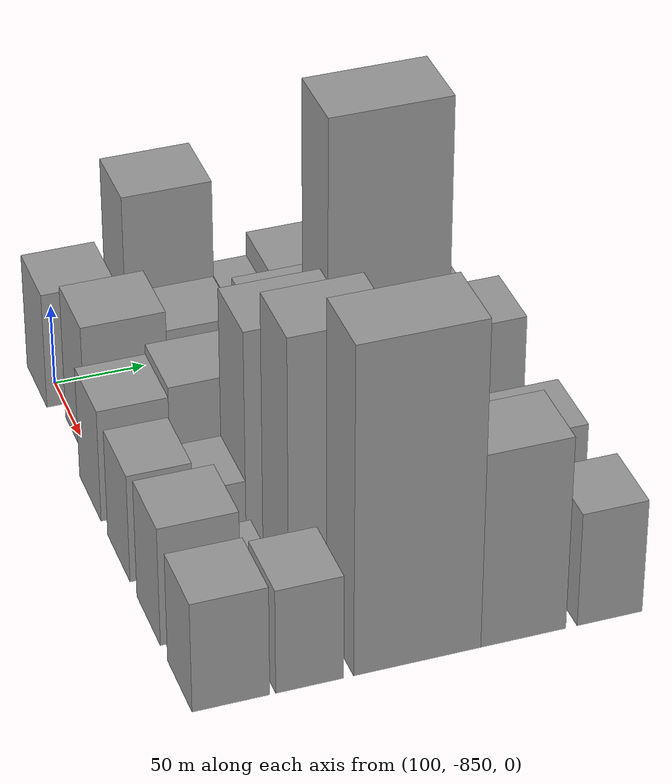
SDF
<sdf version="1.6">
 <world name="default">
  <model name="building_1">
   <static>1</static>
   <pose>100.0000 -839.8954 0 0.000000 0.000000 0.000000</pose>
   <link name="link">
    <pose>0 0 36.00 0 0 0</pose>
    <collision name="collision"><geometry><box><size>40.0000 40.2092 72.0000</size></box></geometry></collision>
    <visual name="visual">
     <cast_shadows>0</cast_shadows>
     <geometry><box><size>40.0000 40.2092 72.0000</size></box></geometry>
     <material>
      <script>
       <uri>model://grey_wall/materials/scripts</uri>
       <uri>model://grey_wall/materials/textures</uri>
       <name>vrc/grey_wall</name>
      </script>
     </material>
    </visual>
   </link>
  </model>
  <model name="building_2">
   <static>1</static>
   <pose>100.0000 -790.3096 0 0.000000 0.000000 0.000000</pose>
   <link name="link">
    <pose>0 0 61.50 0 0 0</pose>
    <collision name="collision"><geometry><box><size>40.0000 48.9624 123.0000</size></box></geometry></collision>
    <visual name="visual">
     <cast_shadows>0</cast_shadows>
     <geometry><box><size>40.0000 48.9624 123.0000</size></box></geometry>
     <material>
      <script>
       <uri>model://grey_wall/materials/scripts</uri>
       <uri>model://grey_wall/materials/textures</uri>
       <name>vrc/grey_wall</name>
      </script>
     </material>
    </visual>
   </link>
  </model>
  <model name="building_3">
   <static>1</static>
   <pose>100.0000 -746.4071 0 0.000000 0.000000 0.000000</pose>
   <link name="link">
    <pose>0 0 22.50 0 0 0</pose>
    <collision name="collision"><geometry><box><size>40.0000 22.8427 45.0000</size></box></geometry></collision>
    <visual name="visual">
     <cast_shadows>0</cast_shadows>
     <geometry><box><size>40.0000 22.8427 45.0000</size></box></geometry>
     <material>
      <script>
       <uri>model://grey_wall/materials/scripts</uri>
       <uri>model://grey_wall/materials/textures</uri>
       <name>vrc/grey_wall</name>
      </script>
     </material>
    </visual>
   </link>
  </model>
  <model name="building_4">
   <static>1</static>
   <pose>100.0000 -717.5129 0 0.000000 0.000000 0.000000</pose>
   <link name="link">
    <pose>0 0 30.00 0 0 0</pose>
    <collision name="collision"><geometry><box><size>40.0000 34.9457 60.0000</size></box></geometry></collision>
    <visual name="visual">
     <cast_shadows>0</cast_shadows>
     <geometry><box><size>40.0000 34.9457 60.0000</size></box></geometry>
     <material>
      <script>
       <uri>model://grey_wall/materials/scripts</uri>
       <uri>model://grey_wall/materials/textures</uri>
       <name>vrc/grey_wall</name>
      </script>
     </material>
    </visual>
   </link>
  </model>
  <model name="building_5">
   <static>1</static>
   <pose>100.0000 -680.2870 0 0.000000 0.000000 0.000000</pose>
   <link name="link">
    <pose>0 0 33.00 0 0 0</pose>
    <collision name="collision"><geometry><box><size>40.0000 39.5061 66.0000</size></box></geometry></collision>
    <visual name="visual">
     <cast_shadows>0</cast_shadows>
     <geometry><box><size>40.0000 39.5061 66.0000</size></box></geometry>
     <material>
      <script>
       <uri>model://grey_wall/materials/scripts</uri>
       <uri>model://grey_wall/materials/textures</uri>
       <name>vrc/grey_wall</name>
      </script>
     </material>
    </visual>
   </link>
  </model>
  <model name="building_6">
   <static>1</static>
   <pose>100.0000 -650.8760 0 0.000000 0.000000 0.000000</pose>
   <link name="link">
    <pose>0 0 18.00 0 0 0</pose>
    <collision name="collision"><geometry><box><size>40.0000 19.3160 36.0000</size></box></geometry></collision>
    <visual name="visual">
     <cast_shadows>0</cast_shadows>
     <geometry><box><size>40.0000 19.3160 36.0000</size></box></geometry>
     <material>
      <script>
       <uri>model://grey_wall/materials/scripts</uri>
       <uri>model://grey_wall/materials/textures</uri>
       <name>vrc/grey_wall</name>
      </script>
     </material>
    </visual>
   </link>
  </model>
  <model name="building_53">
   <static>1</static>
   <pose>152.0000 -830.3394 0 0.000000 0.000000 0.000000</pose>
   <link name="link">
    <pose>0 0 42.00 0 0 0</pose>
    <collision name="collision"><geometry><box><size>40.0000 45.3212 84.0000</size></box></geometry></collision>
    <visual name="visual">
     <cast_shadows>0</cast_shadows>
     <geometry><box><size>40.0000 45.3212 84.0000</size></box></geometry>
     <material>
      <script>
       <uri>model://grey_wall/materials/scripts</uri>
       <uri>model://grey_wall/materials/textures</uri>
       <name>vrc/grey_wall</name>
      </script>
     </material>
    </visual>
   </link>
  </model>
  <model name="building_54">
   <static>1</static>
   <pose>152.0000 -788.7393 0 0.000000 0.000000 0.000000</pose>
   <link name="link">
    <pose>0 0 36.00 0 0 0</pose>
    <collision name="collision"><geometry><box><size>40.0000 37.8789 72.0000</size></box></geometry></collision>
    <visual name="visual">
     <cast_shadows>0</cast_shadows>
     <geometry><box><size>40.0000 37.8789 72.0000</size></box></geometry>
     <material>
      <script>
       <uri>model://grey_wall/materials/scripts</uri>
       <uri>model://grey_wall/materials/textures</uri>
       <name>vrc/grey_wall</name>
      </script>
     </material>
    </visual>
   </link>
  </model>
  <model name="building_55">
   <static>1</static>
   <pose>152.0000 -739.1834 0 0.000000 0.000000 0.000000</pose>
   <link name="link">
    <pose>0 0 34.50 0 0 0</pose>
    <collision name="collision"><geometry><box><size>40.0000 41.2328 69.0000</size></box></geometry></collision>
    <visual name="visual">
     <cast_shadows>0</cast_shadows>
     <geometry><box><size>40.0000 41.2328 69.0000</size></box></geometry>
     <material>
      <script>
       <uri>model://grey_wall/materials/scripts</uri>
       <uri>model://grey_wall/materials/textures</uri>
       <name>vrc/grey_wall</name>
      </script>
     </material>
    </visual>
   </link>
  </model>
  <model name="building_56">
   <static>1</static>
   <pose>152.0000 -697.1136 0 0.000000 0.000000 0.000000</pose>
   <link name="link">
    <pose>0 0 42.00 0 0 0</pose>
    <collision name="collision"><geometry><box><size>40.0000 42.9070 84.0000</size></box></geometry></collision>
    <visual name="visual">
     <cast_shadows>0</cast_shadows>
     <geometry><box><size>40.0000 42.9070 84.0000</size></box></geometry>
     <material>
      <script>
       <uri>model://grey_wall/materials/scripts</uri>
       <uri>model://grey_wall/materials/textures</uri>
       <name>vrc/grey_wall</name>
      </script>
     </material>
    </visual>
   </link>
  </model>
  <model name="building_57">
   <static>1</static>
   <pose>152.0000 -659.3815 0 0.000000 0.000000 0.000000</pose>
   <link name="link">
    <pose>0 0 31.50 0 0 0</pose>
    <collision name="collision"><geometry><box><size>40.0000 32.5571 63.0000</size></box></geometry></collision>
    <visual name="visual">
     <cast_shadows>0</cast_shadows>
     <geometry><box><size>40.0000 32.5571 63.0000</size></box></geometry>
     <material>
      <script>
       <uri>model://grey_wall/materials/scripts</uri>
       <uri>model://grey_wall/materials/textures</uri>
       <name>vrc/grey_wall</name>
      </script>
     </material>
    </visual>
   </link>
  </model>
  <model name="building_101">
   <static>1</static>
   <pose>204.0000 -841.2603 0 0.000000 0.000000 0.000000</pose>
   <link name="link">
    <pose>0 0 34.50 0 0 0</pose>
    <collision name="collision"><geometry><box><size>40.0000 37.4795 69.0000</size></box></geometry></collision>
    <visual name="visual">
     <cast_shadows>0</cast_shadows>
     <geometry><box><size>40.0000 37.4795 69.0000</size></box></geometry>
     <material>
      <script>
       <uri>model://grey_wall/materials/scripts</uri>
       <uri>model://grey_wall/materials/textures</uri>
       <name>vrc/grey_wall</name>
      </script>
     </material>
    </visual>
   </link>
  </model>
  <model name="building_102">
   <static>1</static>
   <pose>204.0000 -800.9691 0 0.000000 0.000000 0.000000</pose>
   <link name="link">
    <pose>0 0 37.50 0 0 0</pose>
    <collision name="collision"><geometry><box><size>40.0000 43.1028 75.0000</size></box></geometry></collision>
    <visual name="visual">
     <cast_shadows>0</cast_shadows>
     <geometry><box><size>40.0000 43.1028 75.0000</size></box></geometry>
     <material>
      <script>
       <uri>model://grey_wall/materials/scripts</uri>
       <uri>model://grey_wall/materials/textures</uri>
       <name>vrc/grey_wall</name>
      </script>
     </material>
    </visual>
   </link>
  </model>
  <model name="building_103">
   <static>1</static>
   <pose>204.0000 -758.6244 0 0.000000 0.000000 0.000000</pose>
   <link name="link">
    <pose>0 0 37.50 0 0 0</pose>
    <collision name="collision"><geometry><box><size>40.0000 41.5867 75.0000</size></box></geometry></collision>
    <visual name="visual">
     <cast_shadows>0</cast_shadows>
     <geometry><box><size>40.0000 41.5867 75.0000</size></box></geometry>
     <material>
      <script>
       <uri>model://grey_wall/materials/scripts</uri>
       <uri>model://grey_wall/materials/textures</uri>
       <name>vrc/grey_wall</name>
      </script>
     </material>
    </visual>
   </link>
  </model>
  <model name="building_104">
   <static>1</static>
   <pose>204.0000 -704.9629 0 0.000000 0.000000 0.000000</pose>
   <link name="link">
    <pose>0 0 108.00 0 0 0</pose>
    <collision name="collision"><geometry><box><size>40.0000 65.7364 216.0000</size></box></geometry></collision>
    <visual name="visual">
     <cast_shadows>0</cast_shadows>
     <geometry><box><size>40.0000 65.7364 216.0000</size></box></geometry>
     <material>
      <script>
       <uri>model://grey_wall/materials/scripts</uri>
       <uri>model://grey_wall/materials/textures</uri>
       <name>vrc/grey_wall</name>
      </script>
     </material>
    </visual>
   </link>
  </model>
  <model name="building_105">
   <static>1</static>
   <pose>204.0000 -650.7124 0 0.000000 0.000000 0.000000</pose>
   <link name="link">
    <pose>0 0 37.50 0 0 0</pose>
    <collision name="collision"><geometry><box><size>40.0000 42.7646 75.0000</size></box></geometry></collision>
    <visual name="visual">
     <cast_shadows>0</cast_shadows>
     <geometry><box><size>40.0000 42.7646 75.0000</size></box></geometry>
     <material>
      <script>
       <uri>model://grey_wall/materials/scripts</uri>
       <uri>model://grey_wall/materials/textures</uri>
       <name>vrc/grey_wall</name>
      </script>
     </material>
    </visual>
   </link>
  </model>
  <model name="building_148">
   <static>1</static>
   <pose>256.0000 -843.2354 0 0.000000 0.000000 0.000000</pose>
   <link name="link">
    <pose>0 0 33.00 0 0 0</pose>
    <collision name="collision"><geometry><box><size>40.0000 33.5292 66.0000</size></box></geometry></collision>
    <visual name="visual">
     <cast_shadows>0</cast_shadows>
     <geometry><box><size>40.0000 33.5292 66.0000</size></box></geometry>
     <material>
      <script>
       <uri>model://grey_wall/materials/scripts</uri>
       <uri>model://grey_wall/materials/textures</uri>
       <name>vrc/grey_wall</name>
      </script>
     </material>
    </visual>
   </link>
  </model>
  <model name="building_149">
   <static>1</static>
   <pose>256.0000 -812.7556 0 0.000000 0.000000 0.000000</pose>
   <link name="link">
    <pose>0 0 24.00 0 0 0</pose>
    <collision name="collision"><geometry><box><size>40.0000 27.4304 48.0000</size></box></geometry></collision>
    <visual name="visual">
     <cast_shadows>0</cast_shadows>
     <geometry><box><size>40.0000 27.4304 48.0000</size></box></geometry>
     <material>
      <script>
       <uri>model://grey_wall/materials/scripts</uri>
       <uri>model://grey_wall/materials/textures</uri>
       <name>vrc/grey_wall</name>
      </script>
     </material>
    </visual>
   </link>
  </model>
  <model name="building_150">
   <static>1</static>
   <pose>256.0000 -772.6445 0 0.000000 0.000000 0.000000</pose>
   <link name="link">
    <pose>0 0 69.00 0 0 0</pose>
    <collision name="collision"><geometry><box><size>40.0000 52.7917 138.0000</size></box></geometry></collision>
    <visual name="visual">
     <cast_shadows>0</cast_shadows>
     <geometry><box><size>40.0000 52.7917 138.0000</size></box></geometry>
     <material>
      <script>
       <uri>model://grey_wall/materials/scripts</uri>
       <uri>model://grey_wall/materials/textures</uri>
       <name>vrc/grey_wall</name>
      </script>
     </material>
    </visual>
   </link>
  </model>
  <model name="building_151">
   <static>1</static>
   <pose>256.0000 -743.2156 0 0.000000 0.000000 0.000000</pose>
   <link name="link">
    <pose>0 0 7.50 0 0 0</pose>
    <collision name="collision"><geometry><box><size>40.0000 6.0661 15.0000</size></box></geometry></collision>
    <visual name="visual">
     <cast_shadows>0</cast_shadows>
     <geometry><box><size>40.0000 6.0661 15.0000</size></box></geometry>
     <material>
      <script>
       <uri>model://grey_wall/materials/scripts</uri>
       <uri>model://grey_wall/materials/textures</uri>
       <name>vrc/grey_wall</name>
      </script>
     </material>
    </visual>
   </link>
  </model>
  <model name="building_152">
   <static>1</static>
   <pose>256.0000 -723.8103 0 0.000000 0.000000 0.000000</pose>
   <link name="link">
    <pose>0 0 22.50 0 0 0</pose>
    <collision name="collision"><geometry><box><size>40.0000 22.7446 45.0000</size></box></geometry></collision>
    <visual name="visual">
     <cast_shadows>0</cast_shadows>
     <geometry><box><size>40.0000 22.7446 45.0000</size></box></geometry>
     <material>
      <script>
       <uri>model://grey_wall/materials/scripts</uri>
       <uri>model://grey_wall/materials/textures</uri>
       <name>vrc/grey_wall</name>
      </script>
     </material>
    </visual>
   </link>
  </model>
  <model name="building_153">
   <static>1</static>
   <pose>256.0000 -693.6555 0 0.000000 0.000000 0.000000</pose>
   <link name="link">
    <pose>0 0 58.50 0 0 0</pose>
    <collision name="collision"><geometry><box><size>40.0000 37.5650 117.0000</size></box></geometry></collision>
    <visual name="visual">
     <cast_shadows>0</cast_shadows>
     <geometry><box><size>40.0000 37.5650 117.0000</size></box></geometry>
     <material>
      <script>
       <uri>model://grey_wall/materials/scripts</uri>
       <uri>model://grey_wall/materials/textures</uri>
       <name>vrc/grey_wall</name>
      </script>
     </material>
    </visual>
   </link>
  </model>
  <model name="building_154">
   <static>1</static>
   <pose>256.0000 -670.4118 0 0.000000 0.000000 0.000000</pose>
   <link name="link">
    <pose>0 0 9.00 0 0 0</pose>
    <collision name="collision"><geometry><box><size>40.0000 8.9224 18.0000</size></box></geometry></collision>
    <visual name="visual">
     <cast_shadows>0</cast_shadows>
     <geometry><box><size>40.0000 8.9224 18.0000</size></box></geometry>
     <material>
      <script>
       <uri>model://grey_wall/materials/scripts</uri>
       <uri>model://grey_wall/materials/textures</uri>
       <name>vrc/grey_wall</name>
      </script>
     </material>
    </visual>
   </link>
  </model>
  <model name="building_155">
   <static>1</static>
   <pose>256.0000 -657.4738 0 0.000000 0.000000 0.000000</pose>
   <link name="link">
    <pose>0 0 15.00 0 0 0</pose>
    <collision name="collision"><geometry><box><size>40.0000 16.9537 30.0000</size></box></geometry></collision>
    <visual name="visual">
     <cast_shadows>0</cast_shadows>
     <geometry><box><size>40.0000 16.9537 30.0000</size></box></geometry>
     <material>
      <script>
       <uri>model://grey_wall/materials/scripts</uri>
       <uri>model://grey_wall/materials/textures</uri>
       <name>vrc/grey_wall</name>
      </script>
     </material>
    </visual>
   </link>
  </model>
  <model name="building_192">
   <static>1</static>
   <pose>308.0000 -839.3848 0 0.000000 0.000000 0.000000</pose>
   <link name="link">
    <pose>0 0 36.00 0 0 0</pose>
    <collision name="collision"><geometry><box><size>40.0000 41.2304 72.0000</size></box></geometry></collision>
    <visual name="visual">
     <cast_shadows>0</cast_shadows>
     <geometry><box><size>40.0000 41.2304 72.0000</size></box></geometry>
     <material>
      <script>
       <uri>model://grey_wall/materials/scripts</uri>
       <uri>model://grey_wall/materials/textures</uri>
       <name>vrc/grey_wall</name>
      </script>
     </material>
    </visual>
   </link>
  </model>
  <model name="building_193">
   <static>1</static>
   <pose>308.0000 -809.5592 0 0.000000 0.000000 0.000000</pose>
   <link name="link">
    <pose>0 0 16.50 0 0 0</pose>
    <collision name="collision"><geometry><box><size>40.0000 18.4207 33.0000</size></box></geometry></collision>
    <visual name="visual">
     <cast_shadows>0</cast_shadows>
     <geometry><box><size>40.0000 18.4207 33.0000</size></box></geometry>
     <material>
      <script>
       <uri>model://grey_wall/materials/scripts</uri>
       <uri>model://grey_wall/materials/textures</uri>
       <name>vrc/grey_wall</name>
      </script>
     </material>
    </visual>
   </link>
  </model>
  <model name="building_194">
   <static>1</static>
   <pose>308.0000 -797.2122 0 0.000000 0.000000 0.000000</pose>
   <link name="link">
    <pose>0 0 7.50 0 0 0</pose>
    <collision name="collision"><geometry><box><size>40.0000 6.2733 15.0000</size></box></geometry></collision>
    <visual name="visual">
     <cast_shadows>0</cast_shadows>
     <geometry><box><size>40.0000 6.2733 15.0000</size></box></geometry>
     <material>
      <script>
       <uri>model://grey_wall/materials/scripts</uri>
       <uri>model://grey_wall/materials/textures</uri>
       <name>vrc/grey_wall</name>
      </script>
     </material>
    </visual>
   </link>
  </model>
  <model name="building_195">
   <static>1</static>
   <pose>308.0000 -767.9832 0 0.000000 0.000000 0.000000</pose>
   <link name="link">
    <pose>0 0 84.00 0 0 0</pose>
    <collision name="collision"><geometry><box><size>40.0000 52.1848 168.0000</size></box></geometry></collision>
    <visual name="visual">
     <cast_shadows>0</cast_shadows>
     <geometry><box><size>40.0000 52.1848 168.0000</size></box></geometry>
     <material>
      <script>
       <uri>model://grey_wall/materials/scripts</uri>
       <uri>model://grey_wall/materials/textures</uri>
       <name>vrc/grey_wall</name>
      </script>
     </material>
    </visual>
   </link>
  </model>
  <model name="building_196">
   <static>1</static>
   <pose>308.0000 -727.3388 0 0.000000 0.000000 0.000000</pose>
   <link name="link">
    <pose>0 0 46.50 0 0 0</pose>
    <collision name="collision"><geometry><box><size>40.0000 29.1040 93.0000</size></box></geometry></collision>
    <visual name="visual">
     <cast_shadows>0</cast_shadows>
     <geometry><box><size>40.0000 29.1040 93.0000</size></box></geometry>
     <material>
      <script>
       <uri>model://grey_wall/materials/scripts</uri>
       <uri>model://grey_wall/materials/textures</uri>
       <name>vrc/grey_wall</name>
      </script>
     </material>
    </visual>
   </link>
  </model>
  <model name="building_197">
   <static>1</static>
   <pose>308.0000 -699.7958 0 0.000000 0.000000 0.000000</pose>
   <link name="link">
    <pose>0 0 25.50 0 0 0</pose>
    <collision name="collision"><geometry><box><size>40.0000 25.9822 51.0000</size></box></geometry></collision>
    <visual name="visual">
     <cast_shadows>0</cast_shadows>
     <geometry><box><size>40.0000 25.9822 51.0000</size></box></geometry>
     <material>
      <script>
       <uri>model://grey_wall/materials/scripts</uri>
       <uri>model://grey_wall/materials/textures</uri>
       <name>vrc/grey_wall</name>
      </script>
     </material>
    </visual>
   </link>
  </model>
  <model name="building_198">
   <static>1</static>
   <pose>308.0000 -662.6240 0 0.000000 0.000000 0.000000</pose>
   <link name="link">
    <pose>0 0 40.50 0 0 0</pose>
    <collision name="collision"><geometry><box><size>40.0000 48.3613 81.0000</size></box></geometry></collision>
    <visual name="visual">
     <cast_shadows>0</cast_shadows>
     <geometry><box><size>40.0000 48.3613 81.0000</size></box></geometry>
     <material>
      <script>
       <uri>model://grey_wall/materials/scripts</uri>
       <uri>model://grey_wall/materials/textures</uri>
       <name>vrc/grey_wall</name>
      </script>
     </material>
    </visual>
   </link>
  </model>
  <model name="building_243">
   <static>1</static>
   <pose>360.0000 -840.5285 0 0.000000 0.000000 0.000000</pose>
   <link name="link">
    <pose>0 0 33.00 0 0 0</pose>
    <collision name="collision"><geometry><box><size>40.0000 38.9429 66.0000</size></box></geometry></collision>
    <visual name="visual">
     <cast_shadows>0</cast_shadows>
     <geometry><box><size>40.0000 38.9429 66.0000</size></box></geometry>
     <material>
      <script>
       <uri>model://grey_wall/materials/scripts</uri>
       <uri>model://grey_wall/materials/textures</uri>
       <name>vrc/grey_wall</name>
      </script>
     </material>
    </visual>
   </link>
  </model>
  <model name="building_244">
   <static>1</static>
   <pose>360.0000 -800.7954 0 0.000000 0.000000 0.000000</pose>
   <link name="link">
    <pose>0 0 31.50 0 0 0</pose>
    <collision name="collision"><geometry><box><size>40.0000 34.5233 63.0000</size></box></geometry></collision>
    <visual name="visual">
     <cast_shadows>0</cast_shadows>
     <geometry><box><size>40.0000 34.5233 63.0000</size></box></geometry>
     <material>
      <script>
       <uri>model://grey_wall/materials/scripts</uri>
       <uri>model://grey_wall/materials/textures</uri>
       <name>vrc/grey_wall</name>
      </script>
     </material>
    </visual>
   </link>
  </model>
  <model name="building_245">
   <static>1</static>
   <pose>360.0000 -745.7138 0 0.000000 0.000000 0.000000</pose>
   <link name="link">
    <pose>0 0 97.50 0 0 0</pose>
    <collision name="collision"><geometry><box><size>40.0000 65.6400 195.0000</size></box></geometry></collision>
    <visual name="visual">
     <cast_shadows>0</cast_shadows>
     <geometry><box><size>40.0000 65.6400 195.0000</size></box></geometry>
     <material>
      <script>
       <uri>model://grey_wall/materials/scripts</uri>
       <uri>model://grey_wall/materials/textures</uri>
       <name>vrc/grey_wall</name>
      </script>
     </material>
    </visual>
   </link>
  </model>
  <model name="building_246">
   <static>1</static>
   <pose>360.0000 -690.5812 0 0.000000 0.000000 0.000000</pose>
   <link name="link">
    <pose>0 0 58.50 0 0 0</pose>
    <collision name="collision"><geometry><box><size>40.0000 44.6252 117.0000</size></box></geometry></collision>
    <visual name="visual">
     <cast_shadows>0</cast_shadows>
     <geometry><box><size>40.0000 44.6252 117.0000</size></box></geometry>
     <material>
      <script>
       <uri>model://grey_wall/materials/scripts</uri>
       <uri>model://grey_wall/materials/textures</uri>
       <name>vrc/grey_wall</name>
      </script>
     </material>
    </visual>
   </link>
  </model>
  <model name="building_247">
   <static>1</static>
   <pose>360.0000 -645.0077 0 0.000000 0.000000 0.000000</pose>
   <link name="link">
    <pose>0 0 34.50 0 0 0</pose>
    <collision name="collision"><geometry><box><size>40.0000 34.5218 69.0000</size></box></geometry></collision>
    <visual name="visual">
     <cast_shadows>0</cast_shadows>
     <geometry><box><size>40.0000 34.5218 69.0000</size></box></geometry>
     <material>
      <script>
       <uri>model://grey_wall/materials/scripts</uri>
       <uri>model://grey_wall/materials/textures</uri>
       <name>vrc/grey_wall</name>
      </script>
     </material>
    </visual>
   </link>
  </model>
 </world>
</sdf>
